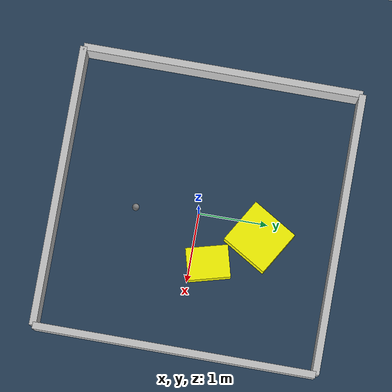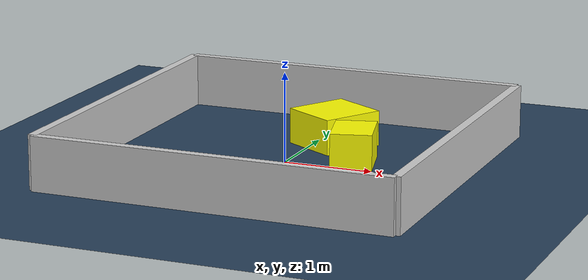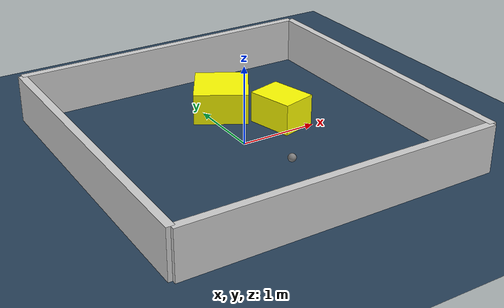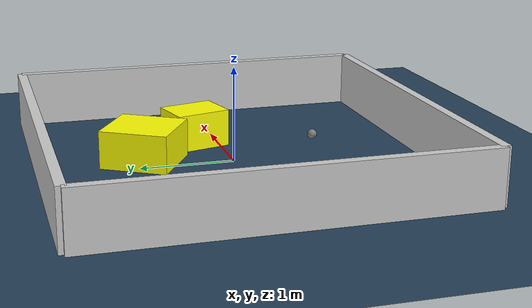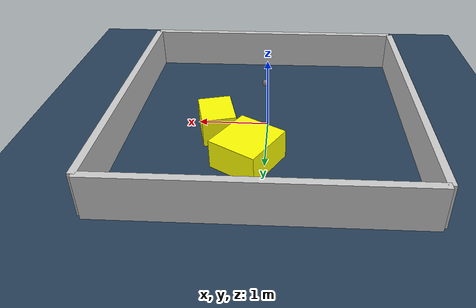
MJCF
<?xml version="1.0" ?>
<mujoco model="generated_environment">
  <option timestep="0.01" integrator="RK4" cone="elliptic"/>
  <default>
    <geom density="1"/>
  </default>
  <asset>
    <texture builtin="gradient" height="3072" rgb1="0.3 0.5 0.7" rgb2="0 0 0" type="skybox" width="512"/>
    <texture builtin="checker" height="300" mark="edge" markrgb="0.8 0.8 0.8" name="groundplane" rgb1="0.2 0.3 0.4" rgb2="0.1 0.2 0.3" type="2d" width="300"/>
    <material name="groundplane" reflectance="0.2" texrepeat="5 5" texture="groundplane" texuniform="true"/>
    <material name="robot" rgba="0.0 1.0 0.0 1"/>
  </asset>
  <worldbody>
    <light dir="0 0 -1" directional="true" pos="0 0 1.5"/>
    <geom condim="4" friction="1.0 0.005 0.001" material="groundplane" name="floor" size="0 0 0.05" type="plane"/>
    <body name="walls">
      <geom name="wall_1" condim="4" pos="-2.0 0.0 0.3" rgba="0.800000011920929 0.800000011920929 0.800000011920929 1.0" size="0.05 2.0 0.3" type="box"/>
      <geom name="wall_2" condim="4" pos="2.0 0.0 0.3" rgba="0.800000011920929 0.800000011920929 0.800000011920929 1.0" size="0.05 2.0 0.3" type="box"/>
      <geom name="wall_3" condim="4" pos="0.0 -2.0 0.3" rgba="0.800000011920929 0.800000011920929 0.800000011920929 1.0" size="2.0 0.05 0.3" type="box"/>
      <geom name="wall_4" condim="4" pos="0.0 2.0 0.3" rgba="0.800000011920929 0.800000011920929 0.800000011920929 1.0" size="2.0 0.05 0.3" type="box"/>
    </body>
    <body name="robot">
      <joint name="joint_x" type="slide" pos="0 0 0" axis="1 0 0"/>
      <joint name="joint_y" type="slide" pos="0 0 0" axis="0 1 0"/>
      <geom name="robot" type="sphere" pos="0.08382036771045409 -0.8914198107927414 0.2" size="0.05" mass="5." friction="1.0 0.005 0.0001" condim="4"/>
      <site name="sensor_ball"/>
    </body>
    <body name="obstacle_1_movable">
      <geom name="obstacle_1_movable" condim="4" pos="0.6987007920625918 0.25562863555821513 0.2" euler="0 0 194.87251872076416" friction="1.0 0.005 0.001" rgba="1 1 0 1" size="0.2292577569299807 0.30129053807767114 0.2" type="box" mass="0.1"/>
      <joint type="free"/>
    </body>
    <body name="obstacle_2_movable">
      <geom name="obstacle_2_movable" condim="4" pos="0.21617612756236348 0.9096403249516307 0.2" euler="0 0 149.16051669701366" friction="1.0 0.005 0.001" rgba="1 1 0 1" size="0.3444053566533133 0.3631567404349198 0.2" type="box" mass="0.1"/>
      <joint type="free"/>
    </body>
  </worldbody>
  <actuator>
    <motor name="actuator_x" joint="joint_x" gear="1" ctrlrange="-1 1"/>
    <motor name="actuator_y" joint="joint_y" gear="1" ctrlrange="-1 1"/>
  </actuator>
</mujoco>
